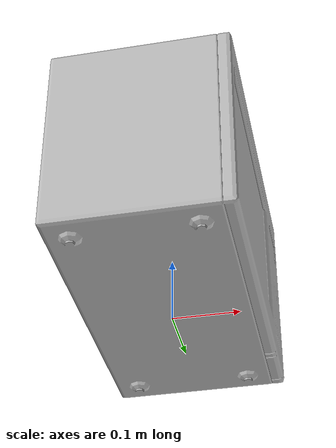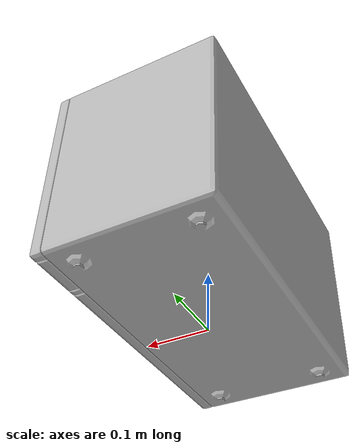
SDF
<?xml version='1.0'?>
<sdf version='1.4'>
  <model name='222'>
    <pose>0 0 0 0 0 0</pose>
    <static>true</static>
    <link name='link'>
      <collision name='collision'>
        <pose>0 0 0 0 0 0</pose>
        <geometry>
          <box>
            <size>0.27 0.49 2</size>
          </box>
        </geometry>
      </collision>
      <visual name='visual'>
        <pose>0 0 0 0 0 0</pose>
        <geometry>
          <mesh><uri>model://222/222.dae</uri></mesh>
        </geometry>
      </visual>
    </link>
  </model>
</sdf>
